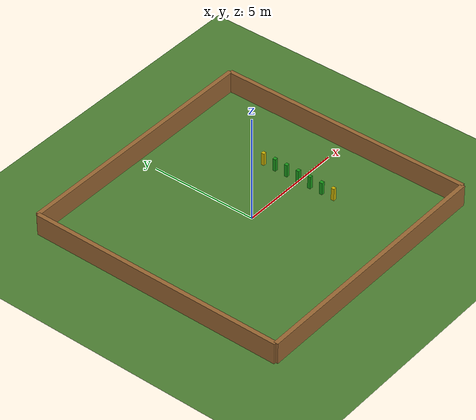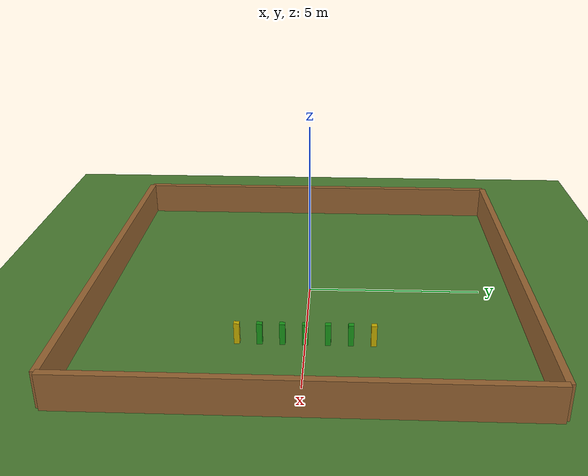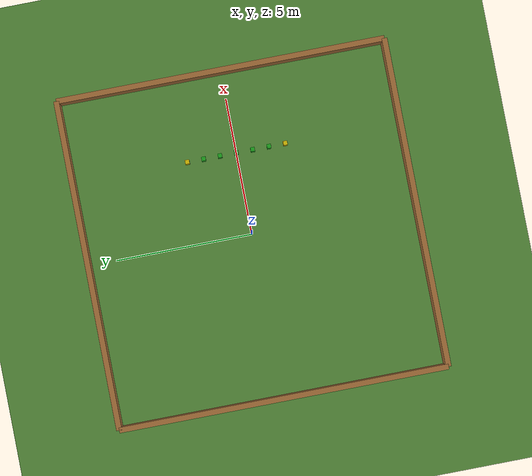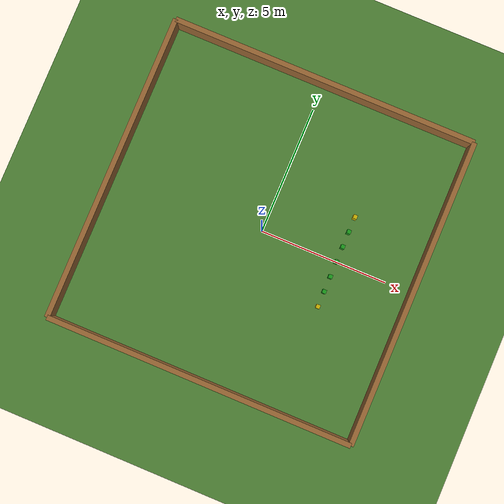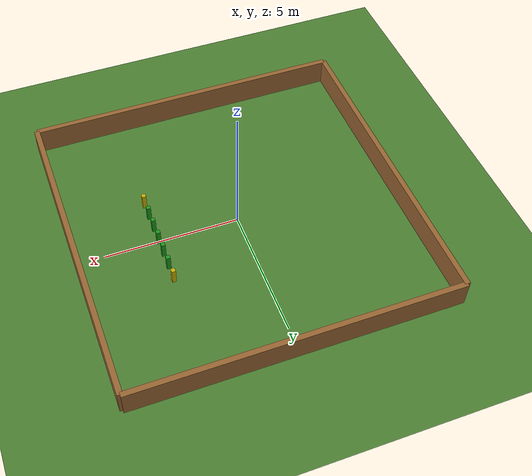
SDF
<?xml version="1.0" ?>
<sdf version="1.8">
  <world name="farm">

    <!-- Physics -->
    <physics name="1ms" type="ignored">
      <max_step_size>0.001</max_step_size>
      <real_time_factor>1.0</real_time_factor>
    </physics>

    <!-- Required Gazebo Harmonic plugins -->
    <plugin filename="gz-sim-physics-system"
            name="gz::sim::systems::Physics"/>
    <plugin filename="gz-sim-user-commands-system"
            name="gz::sim::systems::UserCommands"/>
    <plugin filename="gz-sim-scene-broadcaster-system"
            name="gz::sim::systems::SceneBroadcaster"/>
    <plugin filename="gz-sim-sensors-system"
            name="gz::sim::systems::Sensors">
      <render_engine>ogre2</render_engine>
    </plugin>
    <plugin filename="gz-sim-imu-system"
            name="gz::sim::systems::Imu"/>
    <plugin filename="gz-sim-contact-system"
            name="gz::sim::systems::Contact"/>

    <!-- Lighting -->
    <light name="sun" type="directional">
      <cast_shadows>true</cast_shadows>
      <pose>0 0 10 0 0 0</pose>
      <diffuse>0.8 0.8 0.8 1</diffuse>
      <specular>0.2 0.2 0.2 1</specular>
      <direction>-0.5 0.1 -0.9</direction>
    </light>

    <!-- Ground plane -->
    <model name="ground_plane">
      <static>true</static>
      <link name="link">
        <collision name="collision">
          <geometry>
            <plane>
              <normal>0 0 1</normal>
              <size>50 50</size>
            </plane>
          </geometry>
        </collision>
        <visual name="visual">
          <geometry>
            <plane>
              <normal>0 0 1</normal>
              <size>50 50</size>
            </plane>
          </geometry>
          <material>
            <ambient>0.3 0.5 0.2 1</ambient>
            <diffuse>0.3 0.5 0.2 1</diffuse>
          </material>
        </visual>
      </link>
    </model>

    <!-- ===== PLANT ROW 1 (healthy - green) ===== -->
    <model name="plant_1_1">
      <static>true</static>
      <pose>3.0 0.0 0 0 0 0</pose>
      <link name="link">
        <visual name="stem">
          <pose>0 0 0.3 0 0 0</pose>
          <geometry><box><size>0.15 0.15 0.6</size></box></geometry>
          <material><ambient>0.1 0.6 0.1 1</ambient><diffuse>0.1 0.6 0.1 1</diffuse></material>
        </visual>
        <collision name="col">
          <pose>0 0 0.3 0 0 0</pose>
          <geometry><box><size>0.15 0.15 0.6</size></box></geometry>
        </collision>
      </link>
    </model>

    <model name="plant_1_2">
      <static>true</static>
      <pose>3.0 0.6 0 0 0 0</pose>
      <link name="link">
        <visual name="stem">
          <pose>0 0 0.3 0 0 0</pose>
          <geometry><box><size>0.15 0.15 0.6</size></box></geometry>
          <material><ambient>0.1 0.6 0.1 1</ambient><diffuse>0.1 0.6 0.1 1</diffuse></material>
        </visual>
        <collision name="col">
          <pose>0 0 0.3 0 0 0</pose>
          <geometry><box><size>0.15 0.15 0.6</size></box></geometry>
        </collision>
      </link>
    </model>

    <model name="plant_1_3">
      <static>true</static>
      <pose>3.0 1.2 0 0 0 0</pose>
      <link name="link">
        <visual name="stem">
          <pose>0 0 0.3 0 0 0</pose>
          <geometry><box><size>0.15 0.15 0.6</size></box></geometry>
          <material><ambient>0.1 0.6 0.1 1</ambient><diffuse>0.1 0.6 0.1 1</diffuse></material>
        </visual>
        <collision name="col">
          <pose>0 0 0.3 0 0 0</pose>
          <geometry><box><size>0.15 0.15 0.6</size></box></geometry>
        </collision>
      </link>
    </model>

    <!-- DISEASED plant (yellow) -->
    <model name="plant_1_4_diseased">
      <static>true</static>
      <pose>3.0 1.8 0 0 0 0</pose>
      <link name="link">
        <visual name="stem">
          <pose>0 0 0.3 0 0 0</pose>
          <geometry><box><size>0.15 0.15 0.6</size></box></geometry>
          <material><ambient>0.8 0.7 0.0 1</ambient><diffuse>0.8 0.7 0.0 1</diffuse></material>
        </visual>
        <collision name="col">
          <pose>0 0 0.3 0 0 0</pose>
          <geometry><box><size>0.15 0.15 0.6</size></box></geometry>
        </collision>
      </link>
    </model>

    <!-- ===== PLANT ROW 2 (healthy) ===== -->
    <model name="plant_2_1">
      <static>true</static>
      <pose>3.0 -0.6 0 0 0 0</pose>
      <link name="link">
        <visual name="stem">
          <pose>0 0 0.3 0 0 0</pose>
          <geometry><box><size>0.15 0.15 0.6</size></box></geometry>
          <material><ambient>0.1 0.6 0.1 1</ambient><diffuse>0.1 0.6 0.1 1</diffuse></material>
        </visual>
        <collision name="col">
          <pose>0 0 0.3 0 0 0</pose>
          <geometry><box><size>0.15 0.15 0.6</size></box></geometry>
        </collision>
      </link>
    </model>

    <model name="plant_2_2">
      <static>true</static>
      <pose>3.0 -1.2 0 0 0 0</pose>
      <link name="link">
        <visual name="stem">
          <pose>0 0 0.3 0 0 0</pose>
          <geometry><box><size>0.15 0.15 0.6</size></box></geometry>
          <material><ambient>0.1 0.6 0.1 1</ambient><diffuse>0.1 0.6 0.1 1</diffuse></material>
        </visual>
        <collision name="col">
          <pose>0 0 0.3 0 0 0</pose>
          <geometry><box><size>0.15 0.15 0.6</size></box></geometry>
        </collision>
      </link>
    </model>

    <!-- DISEASED plant (yellow) -->
    <model name="plant_2_3_diseased">
      <static>true</static>
      <pose>3.0 -1.8 0 0 0 0</pose>
      <link name="link">
        <visual name="stem">
          <pose>0 0 0.3 0 0 0</pose>
          <geometry><box><size>0.15 0.15 0.6</size></box></geometry>
          <material><ambient>0.8 0.7 0.0 1</ambient><diffuse>0.8 0.7 0.0 1</diffuse></material>
        </visual>
        <collision name="col">
          <pose>0 0 0.3 0 0 0</pose>
          <geometry><box><size>0.15 0.15 0.6</size></box></geometry>
        </collision>
      </link>
    </model>

    <!-- ===== BOUNDARY WALLS (gives SLAM visual features) ===== -->
    <model name="wall_north">
      <static>true</static>
      <pose>0 6 0.5 0 0 0</pose>
      <link name="link">
        <visual name="v">
          <geometry><box><size>12 0.2 1.0</size></box></geometry>
          <material><ambient>0.6 0.4 0.2 1</ambient><diffuse>0.6 0.4 0.2 1</diffuse></material>
        </visual>
        <collision name="c">
          <geometry><box><size>12 0.2 1.0</size></box></geometry>
        </collision>
      </link>
    </model>

    <model name="wall_south">
      <static>true</static>
      <pose>0 -6 0.5 0 0 0</pose>
      <link name="link">
        <visual name="v">
          <geometry><box><size>12 0.2 1.0</size></box></geometry>
          <material><ambient>0.6 0.4 0.2 1</ambient><diffuse>0.6 0.4 0.2 1</diffuse></material>
        </visual>
        <collision name="c">
          <geometry><box><size>12 0.2 1.0</size></box></geometry>
        </collision>
      </link>
    </model>

    <model name="wall_east">
      <static>true</static>
      <pose>6 0 0.5 0 0 0</pose>
      <link name="link">
        <visual name="v">
          <geometry><box><size>0.2 12 1.0</size></box></geometry>
          <material><ambient>0.6 0.4 0.2 1</ambient><diffuse>0.6 0.4 0.2 1</diffuse></material>
        </visual>
        <collision name="c">
          <geometry><box><size>0.2 12 1.0</size></box></geometry>
        </collision>
      </link>
    </model>

    <model name="wall_west">
      <static>true</static>
      <pose>-6 0 0.5 0 0 0</pose>
      <link name="link">
        <visual name="v">
          <geometry><box><size>0.2 12 1.0</size></box></geometry>
          <material><ambient>0.6 0.4 0.2 1</ambient><diffuse>0.6 0.4 0.2 1</diffuse></material>
        </visual>
        <collision name="c">
          <geometry><box><size>0.2 12 1.0</size></box></geometry>
        </collision>
      </link>
    </model>

  </world>
</sdf>
